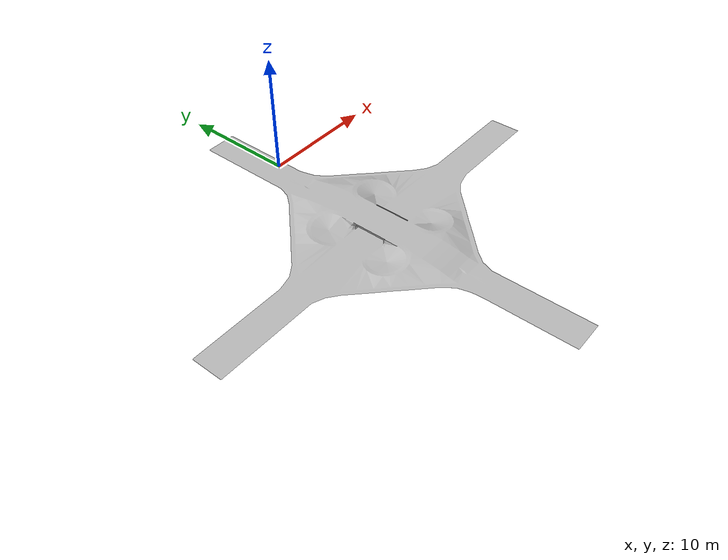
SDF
<?xml version="1.0" ?>
<sdf version="1.5">
  <model name="cloverleaf_interchange">
    <static>true</static>
    <link name="link">
      <collision name="collision">
        <geometry>
          <mesh>
            <uri>model://cloverleaf_interchange/meshes/cloverleaf.obj</uri>
          </mesh>
        </geometry>
      </collision>
      <visual name="visual">
        <geometry>
          <mesh>
            <uri>model://cloverleaf_interchange/meshes/cloverleaf.obj</uri>
          </mesh>
        </geometry>
      </visual>
    </link>
  </model>
</sdf>
